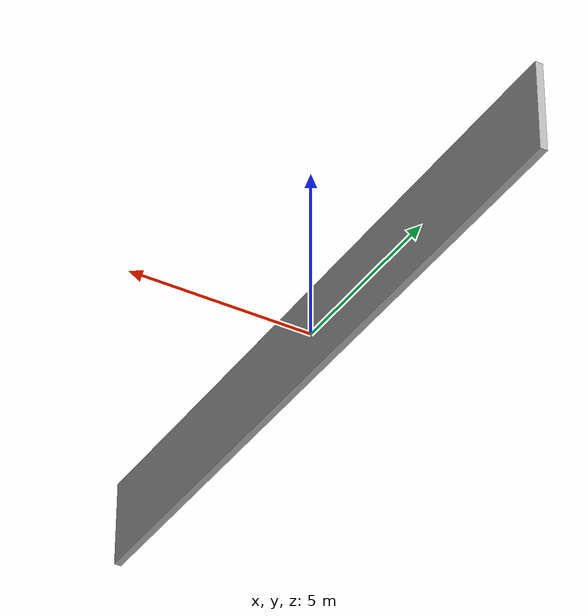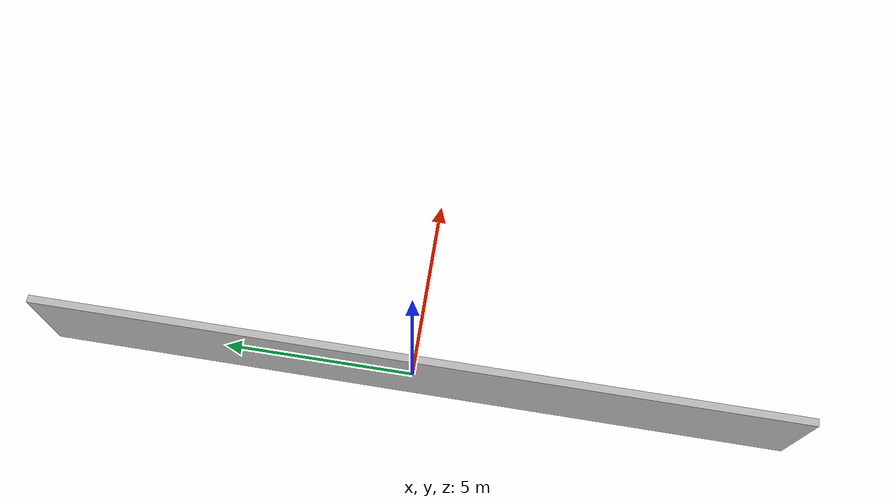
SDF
<?xml version='1.0'?>
<sdf version="1.4">
  <model name="simple_wall">
    <static>true</static>
    <link name="wall_link">
      <visual name="visual">
        <geometry>
          <box>
            <size>0.2 20 2.5</size>
          </box>
        </geometry>
      </visual>
      <collision name="collision">
        <geometry>
          <box>
            <size>0.2 20 2.5</size>
          </box>
        </geometry>
      </collision>
    </link>
  </model>
</sdf>
